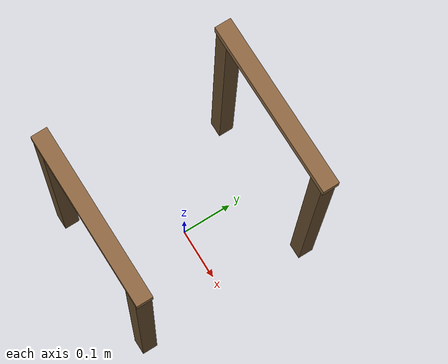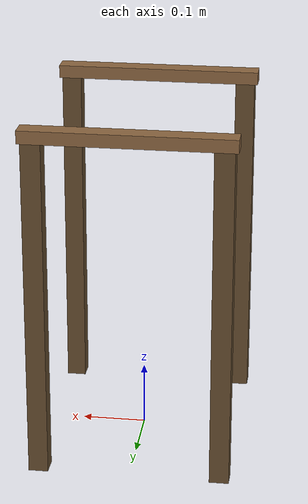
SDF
<?xml version="1.0" ?>
<sdf version="1.9">
  <model name="hillstar_arm_clearance_stand">
    <static>true</static>
    <link name="stand_link">
      <pose>0 0 0 0 0 0</pose>

      <!-- Left rail: supports hillstar_base's collision_leg_left
           (skid centered at y=-0.1715). Top surface at z=0.55. -->
      <collision name="collision_rail_left">
        <pose>0 -0.1715 0.54 0 0 0</pose>
        <geometry>
          <box>
            <size>0.32 0.03 0.02</size>
          </box>
        </geometry>
      </collision>
      <visual name="visual_rail_left">
        <pose>0 -0.1715 0.54 0 0 0</pose>
        <geometry>
          <box>
            <size>0.32 0.03 0.02</size>
          </box>
        </geometry>
        <material>
          <ambient>0.35 0.25 0.15 1</ambient>
          <diffuse>0.55 0.4 0.25 1</diffuse>
          <specular>0.2 0.2 0.2 1</specular>
        </material>
      </visual>

      <!-- Right rail: supports collision_leg_right (skid at y=+0.1715). -->
      <collision name="collision_rail_right">
        <pose>0 0.1715 0.54 0 0 0</pose>
        <geometry>
          <box>
            <size>0.32 0.03 0.02</size>
          </box>
        </geometry>
      </collision>
      <visual name="visual_rail_right">
        <pose>0 0.1715 0.54 0 0 0</pose>
        <geometry>
          <box>
            <size>0.32 0.03 0.02</size>
          </box>
        </geometry>
        <material>
          <ambient>0.35 0.25 0.15 1</ambient>
          <diffuse>0.55 0.4 0.25 1</diffuse>
          <specular>0.2 0.2 0.2 1</specular>
        </material>
      </visual>

      <collision name="collision_leg_fl">
        <pose>0.14 -0.1715 0.265 0 0 0</pose>
        <geometry>
          <box>
            <size>0.03 0.03 0.53</size>
          </box>
        </geometry>
      </collision>
      <visual name="visual_leg_fl">
        <pose>0.14 -0.1715 0.265 0 0 0</pose>
        <geometry>
          <box>
            <size>0.03 0.03 0.53</size>
          </box>
        </geometry>
        <material>
          <ambient>0.25 0.18 0.1 1</ambient>
          <diffuse>0.4 0.3 0.18 1</diffuse>
        </material>
      </visual>

      <collision name="collision_leg_bl">
        <pose>-0.14 -0.1715 0.265 0 0 0</pose>
        <geometry>
          <box>
            <size>0.03 0.03 0.53</size>
          </box>
        </geometry>
      </collision>
      <visual name="visual_leg_bl">
        <pose>-0.14 -0.1715 0.265 0 0 0</pose>
        <geometry>
          <box>
            <size>0.03 0.03 0.53</size>
          </box>
        </geometry>
        <material>
          <ambient>0.25 0.18 0.1 1</ambient>
          <diffuse>0.4 0.3 0.18 1</diffuse>
        </material>
      </visual>

      <collision name="collision_leg_fr">
        <pose>0.14 0.1715 0.265 0 0 0</pose>
        <geometry>
          <box>
            <size>0.03 0.03 0.53</size>
          </box>
        </geometry>
      </collision>
      <visual name="visual_leg_fr">
        <pose>0.14 0.1715 0.265 0 0 0</pose>
        <geometry>
          <box>
            <size>0.03 0.03 0.53</size>
          </box>
        </geometry>
        <material>
          <ambient>0.25 0.18 0.1 1</ambient>
          <diffuse>0.4 0.3 0.18 1</diffuse>
        </material>
      </visual>

      <collision name="collision_leg_br">
        <pose>-0.14 0.1715 0.265 0 0 0</pose>
        <geometry>
          <box>
            <size>0.03 0.03 0.53</size>
          </box>
        </geometry>
      </collision>
      <visual name="visual_leg_br">
        <pose>-0.14 0.1715 0.265 0 0 0</pose>
        <geometry>
          <box>
            <size>0.03 0.03 0.53</size>
          </box>
        </geometry>
        <material>
          <ambient>0.25 0.18 0.1 1</ambient>
          <diffuse>0.4 0.3 0.18 1</diffuse>
        </material>
      </visual>
    </link>
  </model>
</sdf>
